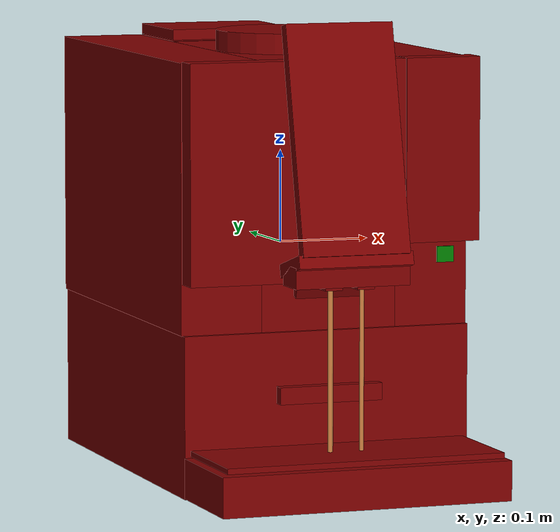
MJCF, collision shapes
<?xml version='1.0' encoding='UTF-8'?>
<mujoco model="model">
  <compiler angle="radian"/>
  <asset>
    <mesh file="visuals/Body001.obj" name="Body001_vis"/>
    <mesh file="visuals/Button001.obj" name="Button001_vis"/>
    <mesh file="visuals/Container001_Clear.obj" name="Container001_Clear_vis"/>
    <mesh file="visuals/Lid001.obj" name="Lid001_vis"/>
    <mesh file="visuals/Lid002.obj" name="Lid002_vis"/>
    <mesh file="visuals/Lid003.obj" name="Lid003_vis"/>
    <texture file="visuals/T_BC001.png" name="Body001_material" type="2d"/>
    <material name="Body001_material" rgba="1 1 1 1.0" texture="Body001_material" shininess="0.4472135901451111" specular="0.3103448502657381"/>
    <texture file="visuals/T_BC001.png" name="Button001_material" type="2d"/>
    <material name="Button001_material" rgba="1 1 1 1.0" texture="Button001_material" shininess="0.4472135901451111" specular="0.3103448502657381"/>
    <texture file="visuals/T_BC001.png" name="Container001_Clear_material" type="2d"/>
    <material name="Container001_Clear_material" rgba="1 1 1 0.7142857313156128" texture="Container001_Clear_material" shininess="0.4472135901451111" specular="0.3103448502657381"/>
    <texture file="visuals/T_BC001.png" name="Lid003_material" type="2d"/>
    <material name="Lid003_material" rgba="1 1 1 1.0" texture="Lid003_material" shininess="0.4472135901451111" specular="0.3103448502657381"/>
    <texture file="visuals/T_BC001.png" name="Lid001_material" type="2d"/>
    <material name="Lid001_material" rgba="1 1 1 1.0" texture="Lid001_material" shininess="0.4472135901451111" specular="0.3103448502657381"/>
    <texture file="visuals/T_BC001.png" name="Lid002_material" type="2d"/>
    <material name="Lid002_material" rgba="1 1 1 1.0" texture="Lid002_material" shininess="0.4472135901451111" specular="0.3103448502657381"/>
  </asset>
  <default>
    <default class="visual">
      <geom conaffinity="0" contype="0" group="1" type="mesh"/>
    </default>
    <default class="collision">
      <geom group="0" rgba="0.5 0 0 0.5"/>
    </default>
    <default class="spawn">
      <geom group="0" rgba="1 1 1 0.5" contype="0" conaffinity="0"/>
      <site group="0" rgba="1 1 1 0.5"/>
    </default>
    <default class="region">
      <geom group="1" conaffinity="0" contype="0" rgba="0 1 0 0"/>
    </default>
  </default>
  <worldbody>
    <body>
      <body name="object">
        <geom class="collision" type="box" pos="0.12085388600826263 -0.18116150796413422 0.0022122410591691732" size="0.008409170433878899 0.0005443526315502822 0.009338179603219032" quat="0.7071068286895752 -4.750302551315144e-08 0.7071067094802856 4.7503014855010406e-08" name="start_button" rgba="0.0 0.5 0 0.5"/>
        <site type="cylinder" rgba="0.8 0.5 0.25 1" size="0.00277316733263433 0.09538598358631134" pos="-0.01739398017525673 -0.20601825416088104 -0.11904381960630417" name="coffee_liquid_left"/>
        <site type="cylinder" rgba="0.8 0.5 0.25 1" size="0.00241901190020144 0.09538598358631134" pos="0.0174851231276989 -0.20601825416088104 -0.11904381960630417" name="coffee_liquid_right"/>
        <site rgba="0 0 0 0" size="0.009999999776482582 0.009999999776482582" pos="0.0 -0.20601825416088104 -0.18723037838935852" name="receptacle_place_site"/>
        <geom mesh="Body001_vis" type="mesh" solimp="0.998 0.998 0.001" solref="0.001 1" density="100" friction="0.95 0.3 0.1" class="visual" material="Body001_material"/>
        <geom class="collision" type="box" pos="-4.8045269096519405e-08 0.06281515955924988 -0.16402041912078857" size="0.1589355617761612 0.21239009499549866 0.0864061787724495" quat="1.0 0.0 0.0 0.0"/>
        <geom class="collision" type="box" pos="1.6543612251060553e-24 -0.21263828873634338 -0.22768020629882812" size="0.15939974784851074 0.06351002305746078 0.02146266959607601" quat="1.0 0.0 0.0 0.0"/>
        <geom class="collision" type="box" pos="-7.686583286774523e-18 -0.15576836466789246 -0.14383438229560852" size="0.057192113250494 0.006974134594202042 0.009114095009863377" quat="1.0 0.0 0.0 0.0"/>
        <geom class="collision" type="box" pos="-0.04179807007312775 -0.16301341354846954 0.09391847252845764" size="0.11941510438919067 0.013994508422911167 0.11654287576675415" quat="1.0 0.0 0.0 0.0"/>
        <geom class="collision" type="box" pos="0.11538470536470413 0.06558600068092346 0.06557190418243408" size="0.20961929857730865 0.04355088248848915 0.14318613708019257" quat="0.7071068286895752 0.0 -0.0 -0.7071067690849304"/>
        <geom class="collision" type="box" pos="-3.256731170862948e-17 -0.20489980280399323 0.12948645651340485" size="0.059209201484918594 0.007089933380484581 0.12202207744121552" quat="0.9932965636253357 -0.115593820810318 -2.566698427360192e-17 -2.12674952547225e-25"/>
        <geom class="collision" type="box" pos="-1.6948454295178707e-17 -0.20800398290157318 -0.011451523751020432" size="0.0631432831287384 0.020103422924876213 0.011192363686859608" quat="1.0 0.0 0.0 0.0"/>
        <geom class="collision" type="box" pos="-1.92581692129146e-17 -0.20761512219905853 -0.001049492391757667" size="0.0631432831287384 0.031083518639206886 0.007167119067162275" quat="0.9912013411521912 -0.13236267864704132 2.939042199572362e-17 6.573262378844603e-26"/>
        <geom class="collision" type="box" pos="-0.017841950058937073 -0.20753341913223267 -0.024680713191628456" size="0.009343880228698254 0.010401414707303047 0.0021750314626842737" quat="1.0 0.0 0.0 0.0"/>
        <geom class="collision" type="box" pos="0.017939981073141098 -0.20753341913223267 -0.024680713191628456" size="0.009343880228698254 0.010401414707303047 0.0021750314626842737" quat="1.0 0.0 0.0 0.0"/>
        <geom class="collision" type="box" pos="-1.2919193838525742e-17 -0.1486460566520691 -0.029597699642181396" size="0.036046307533979416 0.011476344428956509 0.006389331538230181" quat="0.8211787343025208 -0.5706710815429688 1.2671442160845902e-16 2.1321140064252633e-23"/>
        <geom class="collision" type="box" pos="0.11992565542459488 -0.16301341354846954 0.1126638799905777" size="0.04128751903772354 0.013994508422911167 0.0977974608540535" quat="1.0 0.0 0.0 0.0"/>
        <geom class="collision" type="box" pos="-0.11624304950237274 0.06558600068092346 0.06557190418243408" size="0.20961929857730865 0.04451789706945419 0.14318613708019257" quat="0.7071068286895752 0.0 -0.0 -0.7071067690849304"/>
        <geom class="collision" type="box" pos="0.0033423732966184616 0.006203148514032364 0.06557190418243408" size="0.15023645758628845 0.07489413768053055 0.14318613708019257" quat="0.7071068286895752 0.0 -0.0 -0.7071067690849304"/>
        <body name="Button001">
          <joint axis="0.0 1.0 0.0" pos="0.12082412093877792 -0.1796034276485443 0.002212284132838249" limited="true" name="Button001_joint" range="0.0 0.001" type="slide" damping="1" frictionloss="1" armature=".01" stiffness="0.05"/>
          <geom mesh="Button001_vis" type="mesh" solimp="0.998 0.998 0.001" solref="0.001 1" density="100" friction="0.95 0.3 0.1" class="visual" material="Button001_material"/>
          <geom class="collision" type="box" pos="0.12085388600826263 -0.17969004809856415 0.0022122410591691732" size="0.008409170433878899 0.0007065132376737893 0.009338179603219032" quat="0.7071068286895752 -4.750302551315144e-08 0.7071067094802856 4.7503014855010406e-08"/>
        </body>
        <body name="Container001_Clear">
          <joint axis="0.0 0.0 1.0" pos="0.0 0.21864043176174164 0.06814529001712799" limited="true" name="Container001_Clear_joint" range="0.0 0.1" type="slide" damping="1" frictionloss="1" armature=".01" stiffness="0.05"/>
          <geom mesh="Container001_Clear_vis" type="mesh" solimp="0.998 0.998 0.001" solref="0.001 1" density="100" friction="0.95 0.3 0.1" class="visual" material="Container001_Clear_material"/>
          <geom class="collision" type="box" pos="1.1874362826347351e-08 0.21868599951267242 0.06716509908437729" size="0.0565192848443985 0.0690440982580185 0.14159294962882996" quat="0.7071068286895752 0.0 -0.0 -0.7071067690849304"/>
          <body name="Lid003">
            <joint axis="0.0 0.0 1.0" pos="0.0 0.21864044666290283 0.20961710810661316" limited="true" name="Lid003_joint" range="0.0 0.1" type="slide" damping="1" frictionloss="1" armature=".01" stiffness="0.05"/>
            <geom mesh="Lid003_vis" type="mesh" solimp="0.998 0.998 0.001" solref="0.001 1" density="100" friction="0.95 0.3 0.1" class="visual" material="Lid003_material"/>
            <geom class="collision" type="box" pos="1.1874362826347351e-08 0.21868599951267242 0.21568070352077484" size="0.0565192848443985 0.0690440982580185 0.0057818153873085976" quat="0.7071068286895752 0.0 -0.0 -0.7071067690849304"/>
          </body>
        </body>
        <body name="Lid001">
          <joint axis="0.0 0.0 1.0" pos="2.2351741790771484e-08 -0.026857810094952583 0.21387138962745667" limited="true" name="Lid001_joint" range="0.0 0.1" type="slide" damping="1" frictionloss="1" armature=".01" stiffness="0.05"/>
          <geom mesh="Lid001_vis" type="mesh" solimp="0.998 0.998 0.001" solref="0.001 1" density="100" friction="0.95 0.3 0.1" class="visual" material="Lid001_material"/>
          <geom class="collision" type="cylinder" pos="0.0 -0.026674889028072357 0.22212427854537964" size="0.07873135805130005 0.010998568497598171" quat="1.0 0.0 0.0 0.0"/>
        </body>
        <body name="Lid002">
          <joint axis="0.0 0.0 1.0" pos="3.725290298461914e-08 -0.2112608551979065 -0.20277145504951477" limited="true" name="Lid002_joint" range="0.0 0.04" type="slide" damping="1" frictionloss="1" armature=".01" stiffness="0.05"/>
          <geom mesh="Lid002_vis" type="mesh" solimp="0.998 0.998 0.001" solref="0.001 1" density="100" friction="0.95 0.3 0.1" class="visual" material="Lid002_material"/>
          <geom class="collision" type="box" pos="1.6543612251060553e-24 -0.21116110682487488 -0.2012690305709839" size="0.15307533740997314 0.059555765241384506 0.003027976956218481" quat="1.0 0.0 0.0 0.0"/>
        </body>
        <geom class="region" name="reg_main" type="box" pos="0.0 0.0 0.0" size="0.15893563628196716 0.2752052843570709 0.24879589676856995"/>
      </body>
    </body>
  </worldbody>
  <actuator>
    <motor name="Button001_joint_actuator" joint="Button001_joint" gear="0.5"/>
    <motor name="Container001_Clear_joint_actuator" joint="Container001_Clear_joint" gear="100"/>
    <motor name="Lid001_joint_actuator" joint="Lid001_joint" gear="10"/>
    <motor name="Lid002_joint_actuator" joint="Lid002_joint" gear="10"/>
    <motor name="Lid003_joint_actuator" joint="Lid003_joint" gear="10"/>
  </actuator>
</mujoco>
